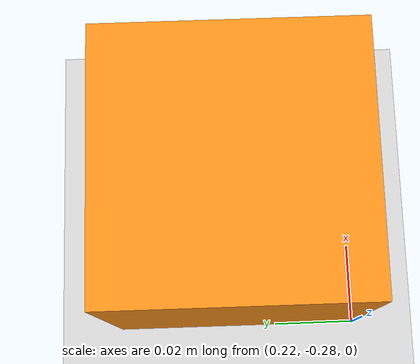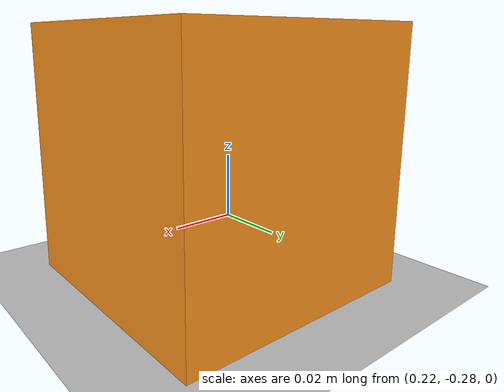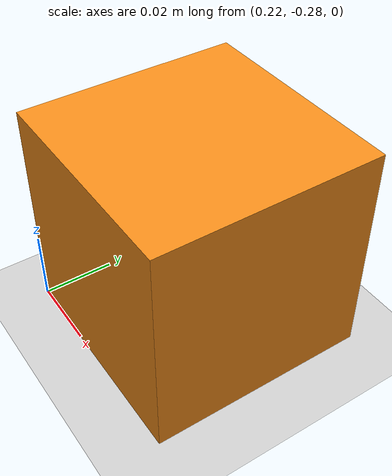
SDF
<?xml version="1.0" ?>
<sdf version="1.4">
  <world name="default">
    <physics type="ode">
      <gravity>0.000000 0.000000 -9.810000</gravity>
      <ode>
        <solver>
          <sor>1.000000</sor>
        </solver>
      </ode>
    </physics>
    <light name='sun' type='directional'>
      <cast_shadows>1</cast_shadows>
      <pose>0 0 10 0 -0 0</pose>
      <diffuse>0.8 0.8 0.8 1</diffuse>
      <specular>0.2 0.2 0.2 1</specular>
      <attenuation>
        <range>1000</range>
        <constant>0.9</constant>
        <linear>0.01</linear>
        <quadratic>0.001</quadratic>
      </attenuation>
      <direction>-0.5 0.1 -0.9</direction>
    </light>
    <!-- A ground plane -->
    <include>
      <uri>model://ground_plane</uri>
    </include>
    <!-- A cube -->
    <include>
      <uri>model://ubr_cube</uri>
      <pose>0.25 -0.25 0.03 0 0 0</pose>
    </include>
  </world>
</sdf>

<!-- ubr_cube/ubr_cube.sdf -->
<sdf version='1.4'>
  <model name="ubr_cube">
      <static>0</static>
      <link name='link'>
        <inertial>
          <mass>0.25</mass>
          <inertia>
            <ixx>0.001</ixx>
            <ixy>0.000000</ixy>
            <ixz>0.000000</ixz>
            <iyy>0.001</iyy>
            <iyz>0.000000</iyz>
            <izz>0.001</izz>
          </inertia>
        </inertial>
        <collision name='collision'>
          <geometry>
            <box>
              <size>0.060 0.060 0.060</size>
            </box>
          </geometry>
          <surface>
            <friction>
              <ode>
                <mu>30.0</mu>
                <mu2>30.0</mu2>
              </ode>
            </friction>
            <contact>
              <ode>
                <kp>1000000.0</kp>
                <kd>100.0</kd>
                <max_vel>1.0</max_vel>
                <min_depth>0.002</min_depth>
              </ode>
            </contact>
          </surface>
        </collision>
        <visual name='visual'>
          <geometry>
            <box>
              <size>0.060 0.060 0.060</size>
            </box>
          </geometry>
          <material>
            <script>
              <uri>file://media/materials/scripts/gazebo.material</uri>
              <name>Gazebo/Orange</name>
            </script>
          </material>
        </visual>
        <velocity_decay>
          <linear>0.000000</linear>
          <angular>0.000000</angular>
        </velocity_decay>
        <self_collide>0</self_collide>
        <kinematic>0</kinematic>
        <gravity>1</gravity>
      </link>
  </model>
</sdf>
